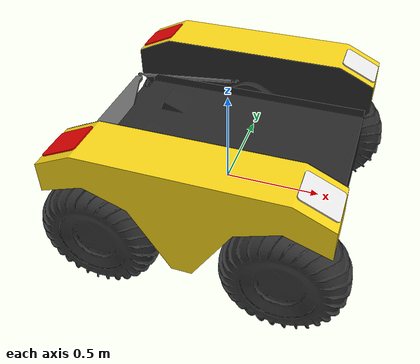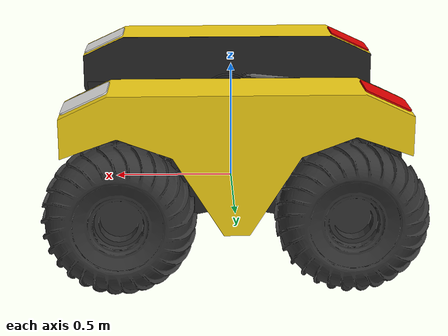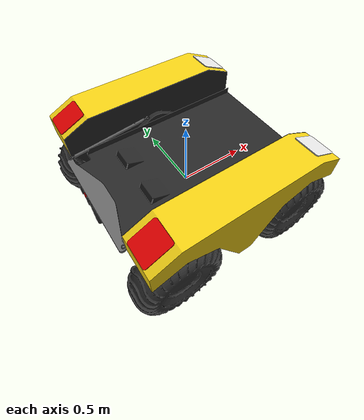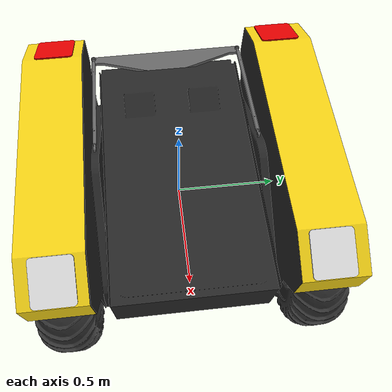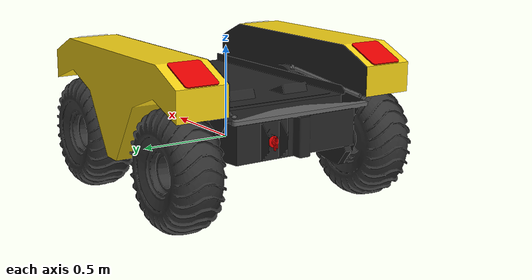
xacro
<?xml version='1.0'?>

<robot name="warthog" xmlns:xacro="http://www.ros.org/wiki/xacro">

  <xacro:property name="PI" value="3.1415926535897931"/>

  <xacro:property name="wheel_radius" value="0.3" />
  <xacro:property name="wheel_width" value="0.25" />
  <xacro:property name="wheel_mass" value="15" />
  <xacro:property name="wheel_to_track_ratio" value="0.5962" />

  <xacro:property name="axle_x_offset" value="0.457367" />
  <xacro:property name="axle_y_offset" value="0.0" />
  <xacro:property name="axle_z_offset" value="-0.012977" />

  <xacro:property name="diff_unit_length" value="1.34" />
  <xacro:property name="diff_unit_width" value="0.28" />
  <xacro:property name="diff_unit_height" value="0.63"/>
  <xacro:property name="diff_unit_mass" value="50" />

  <xacro:property name="diff_unit_offset_x" value="0.00" />
  <xacro:property name="diff_unit_offset_y" value="0.56821" />
  <xacro:property name="diff_unit_offset_z" value="0.0" />

  <xacro:property name="chassis_length" value="1.35" />
  <xacro:property name="chassis_width" value="0.70" />
  <xacro:property name="chassis_height" value="0.30" />
  <xacro:property name="chassis_mass" value="100" />

  <xacro:property name="dummy_inertia" value="1e-09"/>

  <xacro:macro name="wheel_inertia" params="m r h">
    <inertia ixx="${m*(3*r*r+h*h)/12}" ixy="0" ixz="0"
             iyy="${m*r*r/2}" iyz="0"
             izz="${m*(3*r*r+h*h)/12}" />
  </xacro:macro>

  <xacro:macro name="box_inertia" params="m x y z">
    <inertia ixx="${m*(y*y+z*z)/12}" ixy="0" ixz="0"
             iyy="${m*(x*x+z*z)/12}" iyz="0"
             izz="${m*(x*x+z*z)/12}" />
  </xacro:macro>

  <material name="dark_grey"><color rgba="0.2 0.2 0.2 1.0" /></material>
  <material name="light_grey"><color rgba="0.4 0.4 0.4 1.0" /></material>
  <material name="yellow"><color rgba="0.95 0.816 0.082 1.0" /></material>
  <material name="black"><color rgba="0.15 0.15 0.15 1.0" /></material>
  <material name="white"><color rgba="0.9 0.9 0.9 1.0" /></material>
  <material name="red"><color rgba="0.9 0.0 0.0 1.0" /></material>

  <xacro:macro name="wheel" params="prefix side *joint_pose">
    <link name="${prefix}_${side}_wheel_link">
      <inertial>
        <origin xyz="0 0 0" rpy="0 0 0" />
        <mass value="${wheel_mass}" />
        <xacro:wheel_inertia m="${wheel_mass}" r="${wheel_radius}" h="${wheel_width}" />
      </inertial>
      <visual>
        <origin xyz="0 0 0" rpy="0 0 ${PI/2}"/>
        <geometry>
          <mesh filename="package://platform_description/meshes/wheel.stl" />
        </geometry>
        <material name="dark_grey" />
      </visual>
      <collision>
        <origin xyz="0 0 0" rpy="${PI/2} 0 0"/>
        <geometry>
          <cylinder radius="${wheel_radius}" length="${wheel_width}"/>
        </geometry>
      </collision>
    </link>
    <joint name="${prefix}_${side}_wheel_joint" type="continuous">
      <parent link="${side}_diff_unit_link"/>
      <child link="${prefix}_${side}_wheel_link"/>
      <xacro:insert_block name="joint_pose" />
      <axis xyz="0 1 0"/>
    </joint>
    <gazebo reference="${prefix}_${side}_wheel_link">
      <selfCollide>false</selfCollide>
      <mu1>0.5</mu1>
      <mu2>0.5</mu2>
      <kp value="10000000.0" />
      <kd value="1.0" />
      <fdir1 value="1 0 0" />
      <material>Gazebo/Grey</material>
    </gazebo>
    <transmission name="${prefix}_${side}_wheel_trans">
      <type>transmission_interface/SimpleTransmission</type>
      <joint name="${prefix}_${side}_wheel_joint">
        <hardwareInterface>hardware_interface/VelocityJointInterface</hardwareInterface>
      </joint>
      <actuator name="${prefix}_${side}_actuator">
        <hardwareInterface>hardware_interface/VelocityJointInterface</hardwareInterface>
        <mechanicalReduction>1</mechanicalReduction>
      </actuator>
    </transmission>
  </xacro:macro>

  <xacro:macro name="track" params="prefix side *joint_pose">
    <link name="${prefix}_${side}_track_link">
      <visual>
        <origin xyz="0 0 0" rpy="0 0 0"/>
        <geometry>
          <mesh filename="package://platform_description/meshes/tracks.dae" />
        </geometry>
        <material name="dark_grey" />
      </visual>
      <collision>
        <origin xyz="0 0 0" rpy="0 0 0"/>
        <geometry>
          <mesh filename="package://platform_description/meshes/tracks_collision.stl" />
        </geometry>
      </collision>
    </link>
    <joint name="${prefix}_${side}_track_joint" type="fixed">
      <parent link="${side}_diff_unit_link"/>
      <child link="${prefix}_${side}_track_link"/>
      <xacro:insert_block name="joint_pose" />
      <axis xyz="0 1 0"/>
    </joint>

    <!-- This adds wheels that rotate instead of tracks. -->
    <link name="${prefix}_${side}_wheel_link">
      <collision>
        <origin xyz="0 0 0" rpy="${PI/2} 0 0"/>
        <geometry>
          <cylinder radius="${wheel_radius*wheel_to_track_ratio}" length="${wheel_width}"/>
        </geometry>
      </collision>
    </link>
    <joint name="${prefix}_${side}_wheel_joint" type="continuous">
      <parent link="${side}_diff_unit_link"/>
      <child link="${prefix}_${side}_wheel_link"/>
      <xacro:insert_block name="joint_pose" />
      <axis xyz="0 1 0"/>
    </joint>
    <transmission name="${prefix}_${side}_wheel_trans">
      <type>transmission_interface/SimpleTransmission</type>
      <joint name="${prefix}_${side}_wheel_joint">
        <hardwareInterface>hardware_interface/VelocityJointInterface</hardwareInterface>
      </joint>
      <actuator name="${prefix}_${side}_actuator">
        <hardwareInterface>hardware_interface/VelocityJointInterface</hardwareInterface>
        <mechanicalReduction>1</mechanicalReduction>
      </actuator>
    </transmission>
  </xacro:macro>

  <xacro:unless value="$(optenv WARTHOG_TRACKS 0)">
    <xacro:wheel prefix="front" side="left">
      <origin xyz="${axle_x_offset*1} ${axle_y_offset*1} ${axle_z_offset}" rpy="0 0 0" />
    </xacro:wheel>
    <xacro:wheel prefix="front" side="right">
      <origin xyz="${axle_x_offset*1} ${axle_y_offset*-1} ${axle_z_offset}" rpy="0 0 0" />
    </xacro:wheel>
    <xacro:wheel prefix="rear" side="left">
      <origin xyz="${axle_x_offset*-1} ${axle_y_offset*1} ${axle_z_offset}" rpy="0 0 0" />
    </xacro:wheel>
    <xacro:wheel prefix="rear" side="right">
      <origin xyz="${axle_x_offset*-1} ${axle_y_offset*-1} ${axle_z_offset}" rpy="0 0 0" />
    </xacro:wheel>
  </xacro:unless>

  <xacro:if value="$(optenv WARTHOG_TRACKS 0)">
    <xacro:track prefix="front" side="left">
      <origin xyz="${axle_x_offset*1} ${axle_y_offset*1} ${axle_z_offset}" rpy="0 0 0" />
    </xacro:track>
    <xacro:track prefix="front" side="right">
      <origin xyz="${axle_x_offset*1} ${axle_y_offset*-1} ${axle_z_offset}" rpy="0 0 0" />
    </xacro:track>
    <xacro:track prefix="rear" side="left">
      <origin xyz="${axle_x_offset*-1} ${axle_y_offset*1} ${axle_z_offset}" rpy="0 0 ${PI}" />
    </xacro:track>
    <xacro:track prefix="rear" side="right">
      <origin xyz="${axle_x_offset*-1} ${axle_y_offset*-1} ${axle_z_offset}" rpy="0 0 ${PI}" />
    </xacro:track>
  </xacro:if>

  <xacro:macro name="diff_unit" params="prefix side left">
    <link name="${prefix}_diff_unit_link">
      <inertial>
        <origin xyz="0 ${side*-1*0.05} 0.197" rpy="0 0 0"/>
        <mass value="${diff_unit_mass}"/>
        <xacro:box_inertia m="${diff_unit_mass}" x="${diff_unit_length}"
                           y="${diff_unit_width}" z="${diff_unit_height}" />
      </inertial>
      <visual>
        <origin xyz="0 0 0" rpy="0 0 ${side*PI/2}"/>
        <geometry>
          <mesh filename="package://platform_description/meshes/rocker.stl" />
        </geometry>
        <material name="black"><color rgba="0.15 0.15 0.15 1.0" /></material>
      </visual>
      <visual>
        <origin xyz="0 0 0" rpy="0 0 ${side*PI/2}"/>
        <geometry>
          <mesh filename="package://platform_description/meshes/fenders.stl" />
        </geometry>
        <material name="yellow"><color rgba="0.95 0.816 0.082 1.0" /></material>
      </visual>
      <visual>
        <origin xyz="0 ${side*-0.0244} 0" rpy="0 0 0"/>
        <geometry>
          <mesh filename="package://platform_description/meshes/light.stl" />
        </geometry>
        <material name="white"><color rgba="0.9 0.9 0.9 1.0" /></material>
      </visual>
      <visual>
        <origin xyz="0 ${side*-0.0244} 0" rpy="0 0 ${side*PI}"/>
        <geometry>
          <mesh filename="package://platform_description/meshes/light.stl" />
        </geometry>
        <material name="red"><color rgba="0.9 0.0 0.0 1.0" /></material>
      </visual>
      <collision>
        <origin xyz="0 0 0" rpy="0 0 ${side*PI/2}"/>
        <geometry>
          <mesh filename="package://platform_description/meshes/fenders.stl" />
        </geometry>
      </collision>
    </link>
    <joint name="${prefix}_diff_unit_joint" type="revolute">
      <limit upper="0.4" lower="-0.4" effort="100" velocity="1"/>
      <parent link="chassis_link"/>
      <child link="${prefix}_diff_unit_link"/>
      <origin xyz="${diff_unit_offset_x} ${diff_unit_offset_y*side} ${diff_unit_offset_z}" rpy="0 0 0" />
      <axis xyz="0 1 0"/>
      <dynamics damping="100" friction="0.5"/>
    </joint>
    <gazebo reference="${prefix}_diff_unit_link">
      <selfCollide>false</selfCollide>
      <material>Gazebo/Yellow</material>
    </gazebo>
  </xacro:macro>

  <xacro:diff_unit prefix="left" side="1" left="true"/>
  <xacro:diff_unit prefix="right" side="-1" left="false"/>

  <link name="base_link"></link>

  <joint name="base_link_joint" type="fixed">
    <origin xyz="0 0 0.025" rpy="0 0 0" />
    <parent link="base_link"/>
    <child link="chassis_link" />
  </joint>

  <link name="chassis_link">
    <inertial>
      <origin xyz="0 0 0" rpy="0 0 0"/>
      <mass value="${chassis_mass}"/>
      <xacro:box_inertia m="${chassis_mass}" x="${chassis_length}"
                         y="${chassis_width}" z="${chassis_height}" />
    </inertial>
    <visual>
      <origin xyz="0 0 0" rpy="0 0 0"/>
      <geometry>
        <mesh filename="package://platform_description/meshes/chassis.stl" />
      </geometry>
      <material name="black"><color rgba="0.15 0.15 0.15 1.0" /></material>
    </visual>
    <visual>
      <origin xyz="0 0 0" rpy="0 0 0"/>
      <geometry>
        <mesh filename="package://platform_description/meshes/e-stop.stl" />
      </geometry>
      <material name="red"><color rgba="0.9 0.0 0.0 1.0" /></material>
    </visual>
    <collision>
      <origin xyz="0 0 0" rpy="0 0 0"/>
      <geometry>
        <mesh filename="package://platform_description/meshes/chassis-collision.stl" />
      </geometry>
    </collision>
  </link>

  <link name="top_chassis_link"></link>

  <joint name="top_link_joint" type="fixed">
    <origin xyz="0 0 0.27218" rpy="0 0 0" />
    <parent link="chassis_link"/>
    <child link="top_chassis_link" />
  </joint>

  <!-- This link is purely to complete the visual look -->
  <link name="diff_link">
    <visual>
      <origin xyz="0 0 0" rpy="0 0 0"/>
      <geometry>
        <mesh filename="package://platform_description/meshes/diff-link.stl" />
      </geometry>
      <material name="light_grey" />
    </visual>
    <visual>
      <origin xyz="0 0 0" rpy="0 0 0"/>
      <geometry>
        <mesh filename="package://platform_description/meshes/susp-link.stl" />
      </geometry>
      <material name="light_grey" />
    </visual>
    <visual>
      <origin xyz="0 0 0" rpy="0 0 0"/>
      <geometry>
        <mesh filename="package://platform_description/meshes/susp-link.stl" />
      </geometry>
      <material name="light_grey" />
    </visual>
  </link>
  <joint name="diff_link_joint" type="fixed">
    <parent link="chassis_link"/>
    <child link="diff_link"/>
    <origin xyz="-0.5826 0 0.24979" rpy="0 0 0" />
  </joint>

  <!-- Sensor Frame. -->
  <link name="imu_link" />
  <joint name="imu_link_joint" type="fixed">
    <parent link="top_chassis_link"/>
    <child link="imu_link" />
    <origin xyz="-0.26 0 0.445" rpy="0 3.1415926 -3.1415926" />
  </joint>
  <link name="velodyne" />
  <joint name="imu_to_velodyne" type="fixed">
    <parent link="imu_link"/>
    <child link="velodyne" />
    <origin xyz="0.6 0 0" rpy="0 3.1415926 -3.1415926" />
  </joint>
  <link name="os1_frame" />
  <joint name="os1_to_imu" type="fixed">
    <parent link="imu_link"/>
    <child link="os1_frame" />
    <origin xyz="0.45 0 -0.07" rpy="0 3.1415926 0" />
  </joint>
  <link name="ouster1/os1_sensor" />
  <joint name="os1_sensor_to_os1_frame" type="fixed">
    <parent link="os1_frame"/>
    <child link="ouster1/os1_sensor" />
    <origin xyz="0 0 0" rpy="0 0 -3.1415926" />
  </joint>

  <link name="ouster1/os1_lidar" />
  <joint name="os1_lidar_to_os1_sensor" type="fixed">
    <parent link="ouster1/os1_sensor"/>
    <child link="ouster1/os1_lidar" />
    <origin xyz="0 0 0.03618" rpy="0 0 -3.1415927" />
  </joint>

  <link name="ouster1/os1_imu" />
  <joint name="os1_imu_to_os1_sensor" type="fixed">
    <parent link="ouster1/os1_sensor"/>
    <child link="ouster1/os1_imu" />
    <origin xyz="0.006253 -0.011775 0.007645" rpy="0 0 0" />
  </joint>
  <!-- Bring in simulation data for Gazebo. -->
  <!--xacro:include filename="$(find platform_description)/urdf/warthog.gazebo" /-->

  <!-- Optional standard accessories, including their simulation data. The rendering
       of these into the final description is controlled by optenv variables, which
       default each one to off.-->
  <!--xacro:include filename="$(find platform_description)/urdf/accessories.urdf.xacro" /-->

  <!-- Optional custom includes. -->
  <!--xacro:include filename="$(optenv WARTHOG_URDF_EXTRAS empty.urdf)" /-->
</robot>
